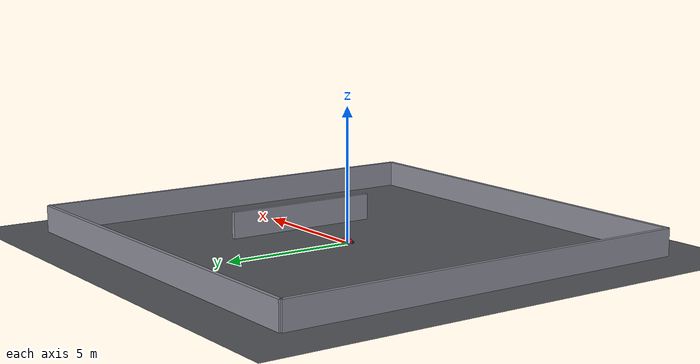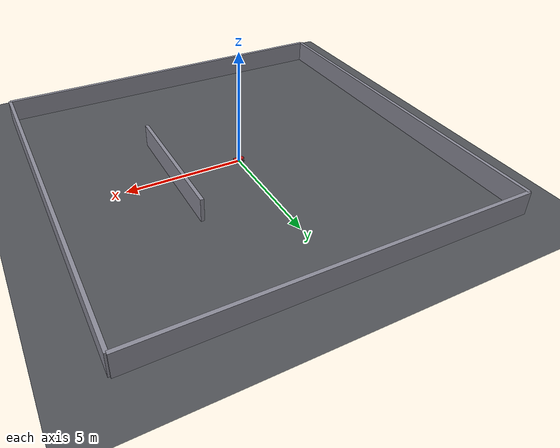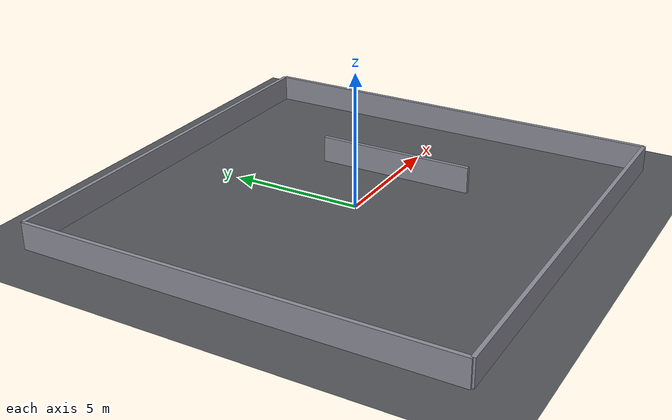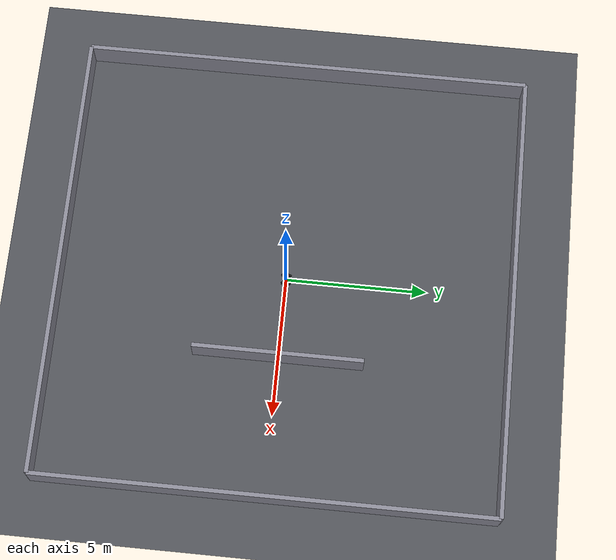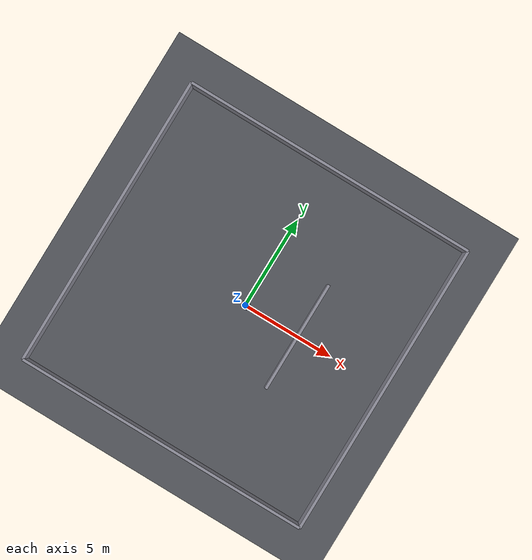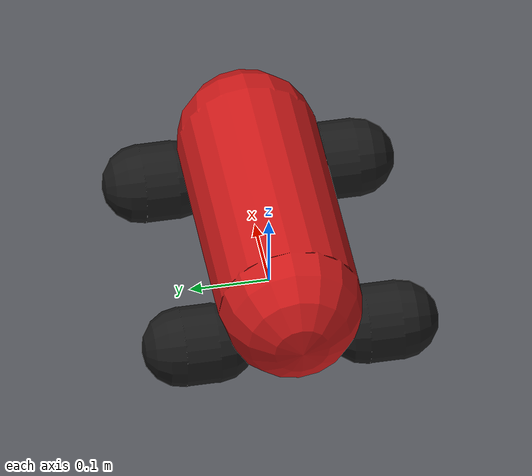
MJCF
<mujoco model="ackermann_car_room">
  <compiler angle="radian"/>
  <option timestep="0.002" gravity="0 0 -9.81" iterations="4" cone="pyramidal"/>

  <default>
    <joint damping="0.05"/>
    <geom friction="2.0 0.1 0.1" contype="1" conaffinity="1"/>
  </default>

  <worldbody>
    <light name="ceiling" pos="0 0 6" dir="0 0 -1" diffuse="0.8 0.8 0.8"/>
    <geom name="floor" type="plane" size="10.0 10.0 0.1" rgba="0.32 0.33 0.35 1"/>
    <geom name="wall_0" type="box" size="8.0000 0.0750 0.5000" pos="0.0000 -8.0000 0.5000" rgba="0.55 0.55 0.60 1"/>
    <geom name="wall_1" type="box" size="8.0000 0.0750 0.5000" pos="0.0000 8.0000 0.5000" rgba="0.55 0.55 0.60 1"/>
    <geom name="wall_2" type="box" size="0.0750 8.0000 0.5000" pos="-8.0000 0.0000 0.5000" rgba="0.55 0.55 0.60 1"/>
    <geom name="wall_3" type="box" size="0.0750 8.0000 0.5000" pos="8.0000 0.0000 0.5000" rgba="0.55 0.55 0.60 1"/>
    <geom name="wall_4" type="box" size="0.0750 3.0000 0.5000" pos="3.0000 0.0000 0.5000" rgba="0.55 0.55 0.60 1"/>

    <body name="chassis" pos="0 0 0.1">
      <freejoint name="chassis_free"/>
      <geom name="chassis_geom" type="capsule" size="0.09" fromto="-0.15 0 0 0.15 0 0" mass="3.0" rgba="0.8 0.1 0.1 1"/>

      <body name="wheel_fl" pos="0.1483 0.115 -0.05">
        <joint name="steer_fl" type="hinge" axis="0 0 1" range="-0.6 0.6" limited="true" damping="1.0"/>
        <geom name="knuckle_fl_geom" type="sphere" size="0.01" mass="0.05" rgba="0.2 0.2 0.2 1"/>
        <body name="wheel_fl_spin">
          <joint name="spin_fl" type="hinge" axis="0 1 0" damping="0.001"/>
          <geom name="wheel_fl_geom" type="capsule" size="0.05" fromto="0 -0.0215 0 0 0.0215 0" mass="0.1" rgba="0.1 0.1 0.1 1"/>
        </body>
      </body>
      <body name="wheel_fr" pos="0.1483 -0.115 -0.05">
        <joint name="steer_fr" type="hinge" axis="0 0 1" range="-0.6 0.6" limited="true" damping="1.0"/>
        <geom name="knuckle_fr_geom" type="sphere" size="0.01" mass="0.05" rgba="0.2 0.2 0.2 1"/>
        <body name="wheel_fr_spin">
          <joint name="spin_fr" type="hinge" axis="0 1 0" damping="0.001"/>
          <geom name="wheel_fr_geom" type="capsule" size="0.05" fromto="0 -0.0215 0 0 0.0215 0" mass="0.1" rgba="0.1 0.1 0.1 1"/>
        </body>
      </body>
      <body name="wheel_rl" pos="-0.1483 0.115 -0.05">
        <joint name="spin_rl" type="hinge" axis="0 1 0" damping="0.001"/>
        <geom name="wheel_rl_geom" type="capsule" size="0.05" fromto="0 -0.0215 0 0 0.0215 0" mass="0.1" rgba="0.1 0.1 0.1 1"/>
      </body>
      <body name="wheel_rr" pos="-0.1483 -0.115 -0.05">
        <joint name="spin_rr" type="hinge" axis="0 1 0" damping="0.001"/>
        <geom name="wheel_rr_geom" type="capsule" size="0.05" fromto="0 -0.0215 0 0 0.0215 0" mass="0.1" rgba="0.1 0.1 0.1 1"/>
      </body>
    </body>
  </worldbody>

  <equality>
    <joint joint1="steer_fl" joint2="steer_fr"/>
  </equality>

  <actuator>
    <position name="steer" joint="steer_fl" kp="80" ctrlrange="-0.6 0.6" forcerange="-20 20"/>
    <motor name="throttle_rl" joint="spin_rl" gear="0.78" ctrlrange="-1 1"/>
    <motor name="throttle_rr" joint="spin_rr" gear="0.78" ctrlrange="-1 1"/>
  </actuator>
</mujoco>
